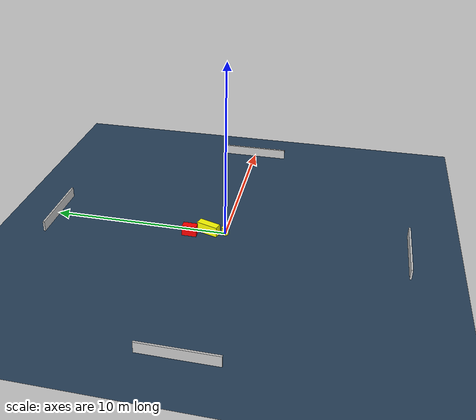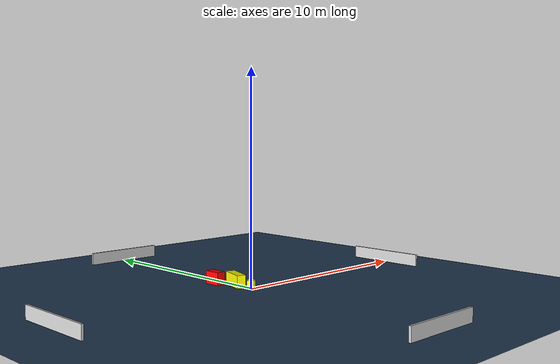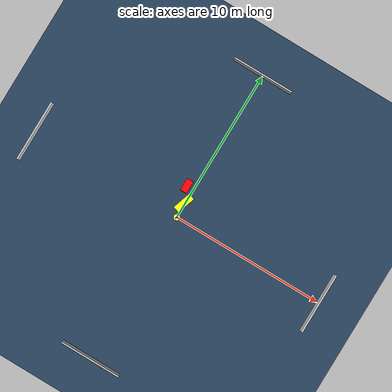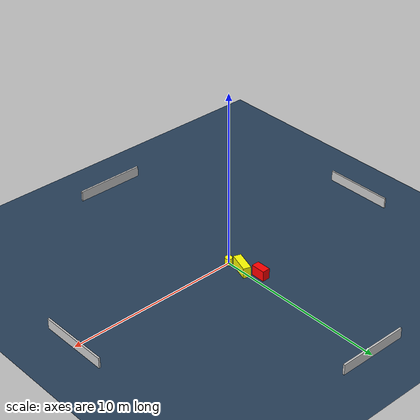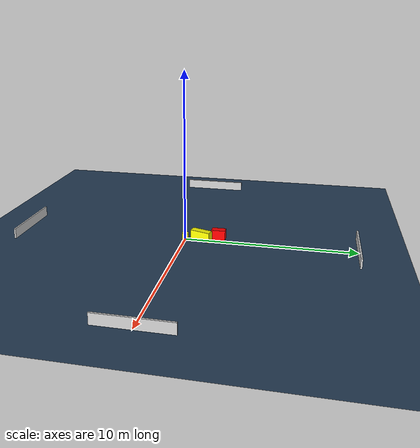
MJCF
<?xml version="1.0" ?>
<mujoco model="generated_environment">
  <option timestep="0.01" integrator="RK4" cone="elliptic"/>
  <default>
    <geom density="1"/>
  </default>
  <asset>
    <texture builtin="gradient" height="3072" name="skybox" rgb1="0.3 0.5 0.7" rgb2="0 0 0" type="skybox" width="512"/>
    <texture builtin="checker" height="300" name="groundplane" rgb1="0.2 0.3 0.4" rgb2="0.1 0.2 0.3" type="2d" width="300"/>
    <material name="groundplane" reflectance="0.2" texrepeat="5 5" texture="groundplane"/>
  </asset>
  <worldbody>
    <light dir="0 0 -1" directional="true" pos="0 0 1.5"/>
    <geom condim="3" friction="0.5 0.005 0.001" material="groundplane" name="floor" pos="0 0 0" size="0 0 0.05" type="plane"/>
    <body name="walls">
      <geom name="wall_1" condim="4" pos="-10.0 0.0 0.3" rgba="0.800000011920929 0.800000011920929 0.800000011920929 1.0" size="0.05 2.0 0.3" type="box"/>
      <geom name="wall_2" condim="4" pos="10.0 0.0 0.3" rgba="0.800000011920929 0.800000011920929 0.800000011920929 1.0" size="0.05 2.0 0.3" type="box"/>
      <geom name="wall_3" condim="4" pos="0.0 -10.0 0.3" rgba="0.800000011920929 0.800000011920929 0.800000011920929 1.0" size="2.0 0.05 0.3" type="box"/>
      <geom name="wall_4" condim="4" pos="0.0 10.0 0.3" rgba="0.800000011920929 0.800000011920929 0.800000011920929 1.0" size="2.0 0.05 0.3" type="box"/>
    </body>
    <body name="robot">
      <joint name="joint_x" type="slide" pos="0 0 0" axis="1 0 0"/>
      <joint name="joint_y" type="slide" pos="0 0 0" axis="0 1 0"/>
      <geom name="robot" type="cylinder" pos="0.0 0.0 0.2" size="0.2 0.2 0.0" mass="5.0" friction="1.0 0.005 0.0001" condim="4" rgba="1.0 1.0 0.0 1.0"/>
    </body>
    <body name="obstacle_1_movable">
      <geom name="obstacle_1_movable" condim="4" pos="-0.07252326222151802 0.9432498550135285 0.3" euler="0 0 341.85343153732026" friction="0.0 0.005 0.001" rgba="1.0 1.0 0.0 1.0" size="0.2174661770437466 0.6179491461936084 0.3" type="box" mass="0.1"/>
      <joint type="free"/>
    </body>
    <body name="obstacle_2_static">
      <geom name="obstacle_2_static" condim="4" pos="-0.4599474412386463 1.929149252018582 0.3" euler="0 0 179.8648928213438" friction="0.0 0.005 0.001" rgba="1.0 0.0 0.0 1.0" size="0.2224685762838435 0.40929791919244896 0.3" type="box"/>
    </body>
  </worldbody>
  <actuator>
    <motor name="actuator_x" joint="joint_x" gear="1" ctrlrange="-1 1"/>
    <motor name="actuator_y" joint="joint_y" gear="1" ctrlrange="-1 1"/>
  </actuator>
</mujoco>
